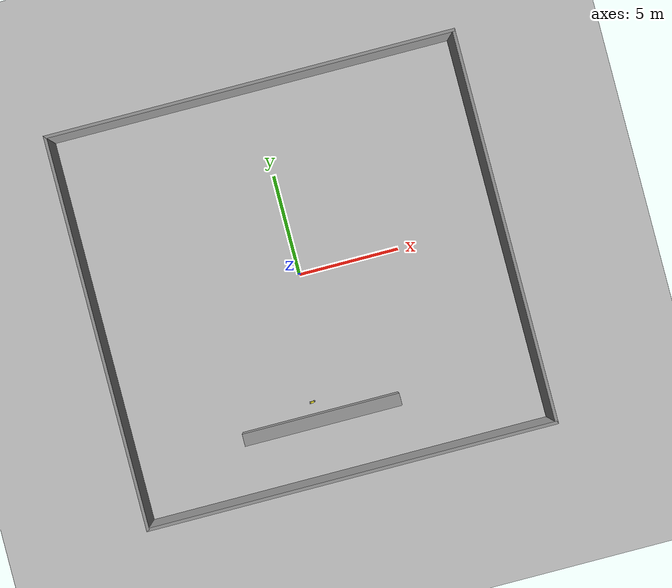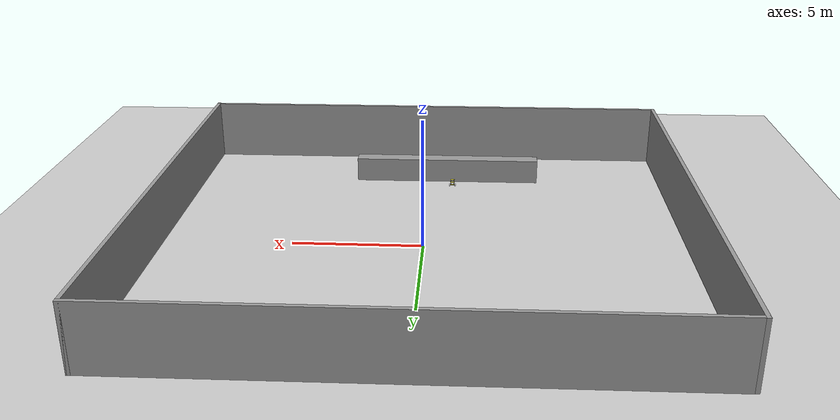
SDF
<sdf version="1.7">
 <world name="default">
  <light name="sun" type="directional">
   <pose>0 0 10 0 -0 0</pose>
   <diffuse>0.8 0.8 0.8 1</diffuse>
   <specular>0.2 0.2 0.2 1</specular>
   <attenuation>
    <range>1000</range>
    <constant>0.9</constant>
    <linear>0.01</linear>
    <quadratic>0.001</quadratic>
   </attenuation>
   <direction>-0.5 0.1 -0.9</direction>
   <spot><inner_angle>0</inner_angle><outer_angle>0</outer_angle><falloff>0</falloff></spot>
  </light>
  <model name="ground_plane">
   <static>1</static>
   <link name="link">
    <collision name="collision">
     <geometry><plane><normal>0 0 1</normal><size>100 100</size></plane></geometry>
     <surface>
      <contact><collide_bitmask>65535</collide_bitmask></contact>
      <friction><ode><mu>100</mu><mu2>50</mu2></ode></friction>
     </surface>
    </collision>
    <visual name="visual">
     <cast_shadows>0</cast_shadows>
     <geometry><plane><normal>0 0 1</normal><size>100 100</size></plane></geometry>
     <material>
      <script><uri>file://media/materials/scripts/gazebo.material</uri><name>Gazebo/Grey</name></script>
     </material>
    </visual>
   </link>
  </model>
  <gravity>0 0 -9.8</gravity>
  <magnetic_field>6e-06 2.3e-05 -4.2e-05</magnetic_field>
  <atmosphere type="adiabatic"/>
  <physics type="ode">
   <max_step_size>0.001</max_step_size>
   <real_time_factor>1</real_time_factor>
   <real_time_update_rate>1000</real_time_update_rate>
  </physics>
  <scene><ambient>0.4 0.4 0.4 1</ambient><background>0.7 0.7 0.7 1</background><shadows>1</shadows></scene>
  <spherical_coordinates>
   <surface_model>EARTH_WGS84</surface_model>
   <latitude_deg>0</latitude_deg>
   <longitude_deg>0</longitude_deg>
   <elevation>0</elevation>
   <heading_deg>0</heading_deg>
  </spherical_coordinates>
  <model name="self_balancing_robot">
   <link name="link_chassis">
    <inertial>
     <pose>0 0 0.092857 0 -0 0</pose>
     <mass>2.8</mass>
     <inertia>
      <ixx>0.0308968</ixx>
      <ixy>0</ixy>
      <ixz>4.02704e-20</ixz>
      <iyy>0.0287208</iyy>
      <iyz>2.73468e-15</iyz>
      <izz>0.0108608</izz>
     </inertia>
    </inertial>
    <collision name="link_chassis_fixed_joint_lump__collision_chassis_collision">
     <geometry><box><size>0.085 0.18 0.004</size></box></geometry>
    </collision>
    <collision name="link_chassis_2_collision_1">
     <pose>0 0 0.225 0 -0 0</pose>
     <geometry><box><size>0.085 0.18 0.004</size></box></geometry>
    </collision>
    <collision name="link_chassis_3_collision_2">
     <pose>0 0 0.115 0 -0 0</pose>
     <geometry><box><size>0.085 0.18 0.004</size></box></geometry>
    </collision>
    <collision name="link_chassis_fixed_joint_lump__cubuk_1_collision_3">
     <pose>0.02 0.06 0.125 0 -0 0</pose>
     <geometry><cylinder><length>0.25</length><radius>0.008</radius></cylinder></geometry>
    </collision>
    <collision name="link_chassis_fixed_joint_lump__cubuk_2_collision_4">
     <pose>-0.02 0.06 0.125 0 -0 0</pose>
     <geometry><cylinder><length>0.25</length><radius>0.008</radius></cylinder></geometry>
    </collision>
    <collision name="link_chassis_fixed_joint_lump__cubuk_3_collision_5">
     <pose>0.02 -0.06 0.125 0 -0 0</pose>
     <geometry><cylinder><length>0.25</length><radius>0.008</radius></cylinder></geometry>
    </collision>
    <collision name="link_chassis_fixed_joint_lump__cubuk_4_collision_6">
     <pose>-0.02 -0.06 0.125 0 -0 0</pose>
     <geometry><cylinder><length>0.25</length><radius>0.008</radius></cylinder></geometry>
    </collision>
    <collision name="link_chassis_fixed_joint_lump__tekerlek_motor_sag_collision_7">
     <pose>0 0.09 -0.02 0 -0 0</pose>
     <geometry><box><size>0.08 0.04 0.05</size></box></geometry>
    </collision>
    <collision name="link_chassis_fixed_joint_lump__teker_cubuk_sag_collision_8">
     <pose>0 0.12 -0.02 1.5708 -0 0</pose>
     <geometry><cylinder><length>0.02</length><radius>0.005</radius></cylinder></geometry>
    </collision>
    <collision name="link_chassis_fixed_joint_lump__tekerlek_motor_sol_collision_9">
     <pose>0 -0.09 -0.02 0 -0 0</pose>
     <geometry><box><size>0.08 0.04 0.05</size></box></geometry>
    </collision>
    <collision name="link_chassis_fixed_joint_lump__teker_cubuk_sol_collision_10">
     <pose>0 -0.12 -0.02 1.5708 -0 0</pose>
     <geometry><cylinder><length>0.02</length><radius>0.005</radius></cylinder></geometry>
    </collision>
    <collision name="link_chassis_fixed_joint_lump__sensor_laser_collision_11">
     <pose>0 0 0.125 0 -0 0</pose>
     <geometry><cylinder><length>0.02</length><radius>0.02</radius></cylinder></geometry>
    </collision>
    <visual name="link_chassis_visual">
     <geometry><box><size>0.085 0.18 0.004</size></box></geometry>
     <material>
      <script><name>Gazebo/Yellow</name><uri>file://media/materials/scripts/gazebo.material</uri></script>
     </material>
    </visual>
    <visual name="link_chassis_2_visual_1">
     <pose>0 0 0.225 0 -0 0</pose>
     <geometry><box><size>0.085 0.18 0.004</size></box></geometry>
     <material>
      <script><name>Gazebo/Yellow</name><uri>file://media/materials/scripts/gazebo.material</uri></script>
     </material>
    </visual>
    <visual name="link_chassis_3_visual_2">
     <pose>0 0 0.115 0 -0 0</pose>
     <geometry><box><size>0.085 0.18 0.004</size></box></geometry>
     <material>
      <script><name>Gazebo/Yellow</name><uri>file://media/materials/scripts/gazebo.material</uri></script>
     </material>
    </visual>
    <visual name="link_chassis_fixed_joint_lump__cubuk_1_visual_3">
     <pose>0.02 0.06 0.125 0 -0 0</pose>
     <geometry><cylinder><length>0.25</length><radius>0.008</radius></cylinder></geometry>
     <material>
      <script><name>Gazebo/Gray</name><uri>file://media/materials/scripts/gazebo.material</uri></script>
     </material>
    </visual>
    <visual name="link_chassis_fixed_joint_lump__cubuk_2_visual_4">
     <pose>-0.02 0.06 0.125 0 -0 0</pose>
     <geometry><cylinder><length>0.25</length><radius>0.008</radius></cylinder></geometry>
     <material>
      <script><name>Gazebo/Gray</name><uri>file://media/materials/scripts/gazebo.material</uri></script>
     </material>
    </visual>
    <visual name="link_chassis_fixed_joint_lump__cubuk_3_visual_5">
     <pose>0.02 -0.06 0.125 0 -0 0</pose>
     <geometry><cylinder><length>0.25</length><radius>0.008</radius></cylinder></geometry>
     <material>
      <script><name>Gazebo/Gray</name><uri>file://media/materials/scripts/gazebo.material</uri></script>
     </material>
    </visual>
    <visual name="link_chassis_fixed_joint_lump__cubuk_4_visual_6">
     <pose>-0.02 -0.06 0.125 0 -0 0</pose>
     <geometry><cylinder><length>0.25</length><radius>0.008</radius></cylinder></geometry>
     <material>
      <script><name>Gazebo/Gray</name><uri>file://media/materials/scripts/gazebo.material</uri></script>
     </material>
    </visual>
    <visual name="link_chassis_fixed_joint_lump__tekerlek_motor_sag_visual_7">
     <pose>0 0.09 -0.02 0 -0 0</pose>
     <geometry><box><size>0.08 0.04 0.05</size></box></geometry>
     <material>
      <script><name>Gazebo/Black</name><uri>file://media/materials/scripts/gazebo.material</uri></script>
     </material>
    </visual>
    <visual name="link_chassis_fixed_joint_lump__teker_cubuk_sag_visual_8">
     <pose>0 0.12 -0.02 1.5708 -0 0</pose>
     <geometry><cylinder><length>0.02</length><radius>0.005</radius></cylinder></geometry>
     <material>
      <script><name>Gazebo/Gray</name><uri>file://media/materials/scripts/gazebo.material</uri></script>
     </material>
    </visual>
    <visual name="link_chassis_fixed_joint_lump__tekerlek_motor_sol_visual_9">
     <pose>0 -0.09 -0.02 0 -0 0</pose>
     <geometry><box><size>0.08 0.04 0.05</size></box></geometry>
     <material>
      <script><name>Gazebo/Black</name><uri>file://media/materials/scripts/gazebo.material</uri></script>
     </material>
    </visual>
    <visual name="link_chassis_fixed_joint_lump__teker_cubuk_sol_visual_10">
     <pose>0 -0.12 -0.02 1.5708 -0 0</pose>
     <geometry><cylinder><length>0.02</length><radius>0.005</radius></cylinder></geometry>
     <material>
      <script><name>Gazebo/Gray</name><uri>file://media/materials/scripts/gazebo.material</uri></script>
     </material>
    </visual>
    <visual name="link_chassis_fixed_joint_lump__sensor_laser_visual_11">
     <pose>0 0 0.125 0 -0 0</pose>
     <geometry><cylinder><length>0.02</length><radius>0.02</radius></cylinder></geometry>
    </visual>
    <sensor name="head_hokuyo_sensor" type="ray">
     <visualize>0</visualize>
     <update_rate>40</update_rate>
     <ray>
      <scan>
       <horizontal>
        <samples>720</samples>
        <resolution>1</resolution>
        <min_angle>-1.5708</min_angle>
        <max_angle>1.5708</max_angle>
       </horizontal>
       <vertical><samples>1</samples><min_angle>0</min_angle><max_angle>0</max_angle></vertical>
      </scan>
      <range><min>0.1</min><max>30</max><resolution>0.01</resolution></range>
      <noise><type>gaussian</type><mean>0</mean><stddev>0.01</stddev></noise>
     </ray>
     <plugin name="gazebo_ros_head_hokuyo_controller" filename="libgazebo_ros_laser.so">
      <topicName>/waiter/laser/scan</topicName>
      <frameName>sensor_laser</frameName>
      <robotNamespace>/</robotNamespace>
     </plugin>
     <pose>0 0 0.125 0 -0 0</pose>
    </sensor>
   </link>
   <joint name="joint_right_wheel" type="revolute">
    <pose relative_to="link_chassis">0 0.12 -0.02 0 -0 0</pose>
    <parent>link_chassis</parent>
    <child>link_right_wheel</child>
    <axis>
     <xyz>0 1 0</xyz>
     <limit><lower>-1e+16</lower><upper>1e+16</upper></limit>
     <dynamics><spring_reference>0</spring_reference><spring_stiffness>0</spring_stiffness></dynamics>
    </axis>
   </joint>
   <link name="link_right_wheel">
    <pose relative_to="joint_right_wheel">0 0 0 0 -0 0</pose>
    <inertial>
     <pose>0 0 0 -0 1.5707 1.5707</pose>
     <mass>0.05</mass>
     <inertia>
      <ixx>5.16666e-05</ixx>
      <ixy>0</ixy>
      <ixz>0</ixz>
      <iyy>6.8429e-05</iyy>
      <iyz>0</iyz>
      <izz>9e-05</izz>
     </inertia>
    </inertial>
    <collision name="link_right_wheel_collision_collision">
     <pose>0 0 0 1.57089 1.57079 -3.14159</pose>
     <geometry><cylinder><length>0.04</length><radius>0.06</radius></cylinder></geometry>
    </collision>
    <visual name="link_right_wheel_visual_visual">
     <pose>0 0 0 1.57089 1.57079 -3.14159</pose>
     <geometry><cylinder><length>0.04</length><radius>0.06</radius></cylinder></geometry>
     <material>
      <script><name>Gazebo/White</name><uri>file://media/materials/scripts/gazebo.material</uri></script>
     </material>
    </visual>
   </link>
   <joint name="joint_left_wheel" type="revolute">
    <pose relative_to="link_chassis">0 -0.12 -0.02 0 -0 0</pose>
    <parent>link_chassis</parent>
    <child>link_left_wheel</child>
    <axis>
     <xyz>0 1 0</xyz>
     <limit><lower>-1e+16</lower><upper>1e+16</upper></limit>
     <dynamics><spring_reference>0</spring_reference><spring_stiffness>0</spring_stiffness></dynamics>
    </axis>
   </joint>
   <link name="link_left_wheel">
    <pose relative_to="joint_left_wheel">0 0 0 0 -0 0</pose>
    <inertial>
     <pose>0 0 0 -0 1.5707 1.5707</pose>
     <mass>0.05</mass>
     <inertia>
      <ixx>5.16666e-05</ixx>
      <ixy>0</ixy>
      <ixz>0</ixz>
      <iyy>6.8429e-05</iyy>
      <iyz>0</iyz>
      <izz>9e-05</izz>
     </inertia>
    </inertial>
    <collision name="link_left_wheel_collision_collision">
     <pose>0 0 0 1.57089 1.57079 -3.14159</pose>
     <geometry><cylinder><length>0.04</length><radius>0.06</radius></cylinder></geometry>
    </collision>
    <visual name="link_left_wheel_visual_visual">
     <pose>0 0 0 1.57089 1.57079 -3.14159</pose>
     <geometry><cylinder><length>0.04</length><radius>0.06</radius></cylinder></geometry>
     <material>
      <script><name>Gazebo/White</name><uri>file://media/materials/scripts/gazebo.material</uri></script>
     </material>
    </visual>
   </link>
   <static>0</static>
   <plugin name="differential_drive_controller" filename="libgazebo_ros_diff_drive.so">
    <legacyMode>0</legacyMode>
    <alwaysOn>1</alwaysOn>
    <updateRate>20</updateRate>
    <leftJoint>joint_left_wheel</leftJoint>
    <rightJoint>joint_right_wheel</rightJoint>
    <wheelSeparation>0.2</wheelSeparation>
    <wheelDiameter>0.2</wheelDiameter>
    <torque>20</torque>
    <commandTopic>cmd_vel</commandTopic>
    <odometryTopic>odom</odometryTopic>
    <odometryFrame>odom</odometryFrame>
    <robotBaseFrame>link_chassis</robotBaseFrame>
    <robotNamespace>/</robotNamespace>
   </plugin>
   <pose>-0.994501 -6.24762 0.080005 2.1e-05 1.4e-05 1.65923</pose>
  </model>
  <model name="Cafe">
   <pose>-0.0176 -0.279452 0 0 -0 0</pose>
   <link name="Wall_27">
    <collision name="Wall_27_Collision">
     <geometry><box><size>19.5 0.15 2.5</size></box></geometry>
     <pose>0 0 1.25 0 -0 0</pose>
    </collision>
    <visual name="Wall_27_Visual">
     <pose>0 0 1.25 0 -0 0</pose>
     <geometry><box><size>19.5 0.15 2.5</size></box></geometry>
     <material>
      <script><uri>file://media/materials/scripts/gazebo.material</uri><name>Gazebo/Grey</name></script>
      <ambient>1 1 1 1</ambient>
     </material>
     <meta><layer>0</layer></meta>
    </visual>
    <pose>-10.0702 0 0 0 -0 1.5708</pose>
   </link>
   <link name="Wall_32">
    <collision name="Wall_32_Collision">
     <geometry><box><size>20.2905 0.15 2.5</size></box></geometry>
     <pose>0 0 1.25 0 -0 0</pose>
    </collision>
    <visual name="Wall_32_Visual">
     <pose>0 0 1.25 0 -0 0</pose>
     <geometry><box><size>20.2905 0.15 2.5</size></box></geometry>
     <material>
      <script><uri>file://media/materials/scripts/gazebo.material</uri><name>Gazebo/Grey</name></script>
      <ambient>1 1 1 1</ambient>
     </material>
     <meta><layer>0</layer></meta>
    </visual>
    <pose>0 9.675 0 0 -0 0</pose>
   </link>
   <link name="Wall_33">
    <collision name="Wall_33_Collision">
     <geometry><box><size>19.5 0.15 2.5</size></box></geometry>
     <pose>0 0 1.25 0 -0 0</pose>
    </collision>
    <visual name="Wall_33_Visual">
     <pose>0 0 1.25 0 -0 0</pose>
     <geometry><box><size>19.5 0.15 2.5</size></box></geometry>
     <material>
      <script><uri>file://media/materials/scripts/gazebo.material</uri><name>Gazebo/Grey</name></script>
      <ambient>1 1 1 1</ambient>
     </material>
     <meta><layer>0</layer></meta>
    </visual>
    <pose>10.0702 0 0 0 -0 -1.5708</pose>
   </link>
   <link name="Wall_36">
    <collision name="Wall_36_Collision">
     <geometry><box><size>20.2905 0.15 2.5</size></box></geometry>
     <pose>0 0 1.25 0 -0 0</pose>
    </collision>
    <visual name="Wall_36_Visual">
     <pose>0 0 1.25 0 -0 0</pose>
     <geometry><box><size>20.2905 0.15 2.5</size></box></geometry>
     <material>
      <script><uri>file://media/materials/scripts/gazebo.material</uri><name>Gazebo/Grey</name></script>
      <ambient>1 1 1 1</ambient>
     </material>
     <meta><layer>0</layer></meta>
    </visual>
    <pose>0 -9.675 0 0 -0 0</pose>
   </link>
   <static>1</static>
  </model>
  <model name="unit_box">
   <pose>-0.739762 -7.133 0.5 0 -0 0</pose>
   <link name="link">
    <inertial>
     <mass>1</mass>
     <inertia>
      <ixx>0.166667</ixx>
      <ixy>0</ixy>
      <ixz>0</ixz>
      <iyy>0.166667</iyy>
      <iyz>0</iyz>
      <izz>0.166667</izz>
     </inertia>
    </inertial>
    <collision name="collision"><geometry><box><size>7.91405 0.614146 1</size></box></geometry></collision>
    <visual name="visual">
     <geometry><box><size>7.91405 0.614146 1</size></box></geometry>
     <material>
      <script><name>Gazebo/Grey</name><uri>file://media/materials/scripts/gazebo.material</uri></script>
     </material>
    </visual>
   </link>
  </model>
 </world>
</sdf>
